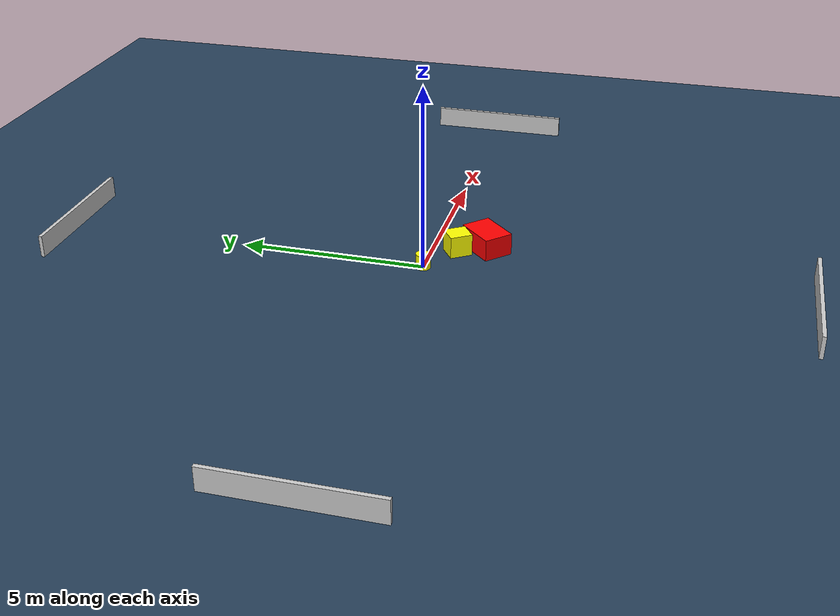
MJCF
<?xml version="1.0" ?>
<mujoco model="generated_environment">
  <option timestep="0.01" integrator="RK4" cone="elliptic"/>
  <default>
    <geom density="1"/>
  </default>
  <asset>
    <texture builtin="gradient" height="3072" name="skybox" rgb1="0.3 0.5 0.7" rgb2="0 0 0" type="skybox" width="512"/>
    <texture builtin="checker" height="300" name="groundplane" rgb1="0.2 0.3 0.4" rgb2="0.1 0.2 0.3" type="2d" width="300"/>
    <material name="groundplane" reflectance="0.2" texrepeat="5 5" texture="groundplane"/>
  </asset>
  <worldbody>
    <light dir="0 0 -1" directional="true" pos="0 0 1.5"/>
    <geom condim="3" friction="0.5 0.005 0.001" material="groundplane" name="floor" pos="0 0 0" size="0 0 0.05" type="plane"/>
    <body name="walls">
      <geom name="wall_1" condim="4" pos="-10.0 0.0 0.3" rgba="0.800000011920929 0.800000011920929 0.800000011920929 1.0" size="0.05 2.0 0.3" type="box"/>
      <geom name="wall_2" condim="4" pos="10.0 0.0 0.3" rgba="0.800000011920929 0.800000011920929 0.800000011920929 1.0" size="0.05 2.0 0.3" type="box"/>
      <geom name="wall_3" condim="4" pos="0.0 -10.0 0.3" rgba="0.800000011920929 0.800000011920929 0.800000011920929 1.0" size="2.0 0.05 0.3" type="box"/>
      <geom name="wall_4" condim="4" pos="0.0 10.0 0.3" rgba="0.800000011920929 0.800000011920929 0.800000011920929 1.0" size="2.0 0.05 0.3" type="box"/>
    </body>
    <body name="robot">
      <joint name="joint_x" type="slide" pos="0 0 0" axis="1 0 0"/>
      <joint name="joint_y" type="slide" pos="0 0 0" axis="0 1 0"/>
      <geom name="robot" type="cylinder" pos="0.0 0.0 0.2" size="0.2 0.2 0.0" mass="5.0" friction="1.0 0.005 0.0001" condim="4" rgba="1.0 1.0 0.0 1.0"/>
    </body>
    <body name="obstacle_1_movable">
      <geom name="obstacle_1_movable" condim="4" pos="1.0585406972637068 -0.6810040806691319 0.3" euler="0 0 124.15280966003849" friction="0.0 0.005 0.001" rgba="1.0 1.0 0.0 1.0" size="0.3071757490302226 0.27861798940211224 0.3" type="box" mass="0.1"/>
      <joint type="free"/>
    </body>
    <body name="obstacle_2_static">
      <geom name="obstacle_2_static" condim="4" pos="1.4261638674635229 -1.4001262953065523 0.3" euler="0 0 315.3265120321805" friction="0.0 0.005 0.001" rgba="1.0 0.0 0.0 1.0" size="0.4114910692903118 0.5708205991584021 0.3" type="box"/>
    </body>
  </worldbody>
  <actuator>
    <motor name="actuator_x" joint="joint_x" gear="1" ctrlrange="-1 1"/>
    <motor name="actuator_y" joint="joint_y" gear="1" ctrlrange="-1 1"/>
  </actuator>
</mujoco>
